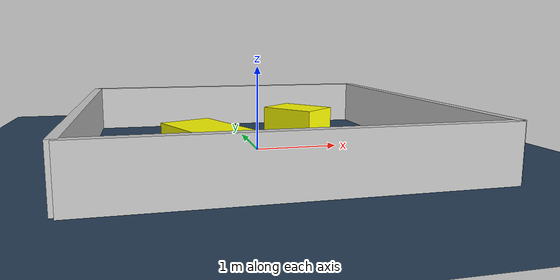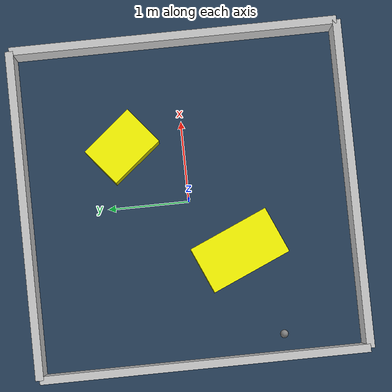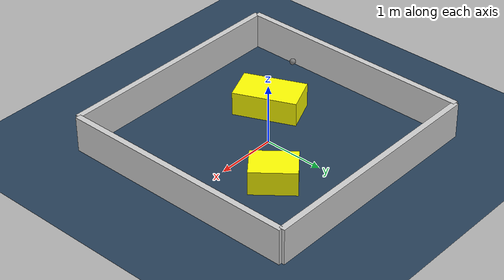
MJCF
<?xml version="1.0" ?>
<mujoco model="generated_environment">
  <option timestep="0.01" integrator="RK4" cone="elliptic"/>
  <default>
    <geom density="1"/>
  </default>
  <asset>
    <texture builtin="gradient" height="3072" rgb1="0.3 0.5 0.7" rgb2="0 0 0" type="skybox" width="512"/>
    <texture builtin="checker" height="300" mark="edge" markrgb="0.8 0.8 0.8" name="groundplane" rgb1="0.2 0.3 0.4" rgb2="0.1 0.2 0.3" type="2d" width="300"/>
    <material name="groundplane" reflectance="0.2" texrepeat="5 5" texture="groundplane" texuniform="true"/>
    <material name="robot" rgba="0.0 1.0 0.0 1"/>
  </asset>
  <worldbody>
    <light dir="0 0 -1" directional="true" pos="0 0 1.5"/>
    <geom condim="4" friction="1.0 0.005 0.001" material="groundplane" name="floor" size="0 0 0.05" type="plane"/>
    <body name="walls">
      <geom name="wall_1" condim="4" pos="-2.0 0.0 0.3" rgba="0.800000011920929 0.800000011920929 0.800000011920929 1.0" size="0.05 2.0 0.3" type="box"/>
      <geom name="wall_2" condim="4" pos="2.0 0.0 0.3" rgba="0.800000011920929 0.800000011920929 0.800000011920929 1.0" size="0.05 2.0 0.3" type="box"/>
      <geom name="wall_3" condim="4" pos="0.0 -2.0 0.3" rgba="0.800000011920929 0.800000011920929 0.800000011920929 1.0" size="2.0 0.05 0.3" type="box"/>
      <geom name="wall_4" condim="4" pos="0.0 2.0 0.3" rgba="0.800000011920929 0.800000011920929 0.800000011920929 1.0" size="2.0 0.05 0.3" type="box"/>
    </body>
    <body name="robot">
      <joint name="joint_x" type="slide" pos="0 0 0" axis="1 0 0"/>
      <joint name="joint_y" type="slide" pos="0 0 0" axis="0 1 0"/>
      <geom name="robot" type="sphere" pos="-1.739151968175212 -1.0026613840183094 0.2" size="0.05" mass="5." friction="1.0 0.005 0.0001" condim="4"/>
      <site name="sensor_ball"/>
    </body>
    <body name="obstacle_1_movable">
      <geom name="obstacle_1_movable" condim="4" pos="-0.6717092690641587 -0.5581391662646484 0.2" euler="0 0 293.4923831737172" friction="1.0 0.005 0.001" rgba="1 1 0 1" size="0.5207165727093229 0.3025449726524713 0.2" type="box" mass="0.1"/>
      <joint type="free"/>
    </body>
    <body name="obstacle_2_movable">
      <geom name="obstacle_2_movable" condim="4" pos="0.7347872854325705 0.7506772469641827 0.2" euler="0 0 129.20450626484165" friction="1.0 0.005 0.001" rgba="1 1 0 1" size="0.36869181400042517 0.27348318857011594 0.2" type="box" mass="0.1"/>
      <joint type="free"/>
    </body>
  </worldbody>
  <actuator>
    <motor name="actuator_x" joint="joint_x" gear="1" ctrlrange="-1 1"/>
    <motor name="actuator_y" joint="joint_y" gear="1" ctrlrange="-1 1"/>
  </actuator>
</mujoco>
